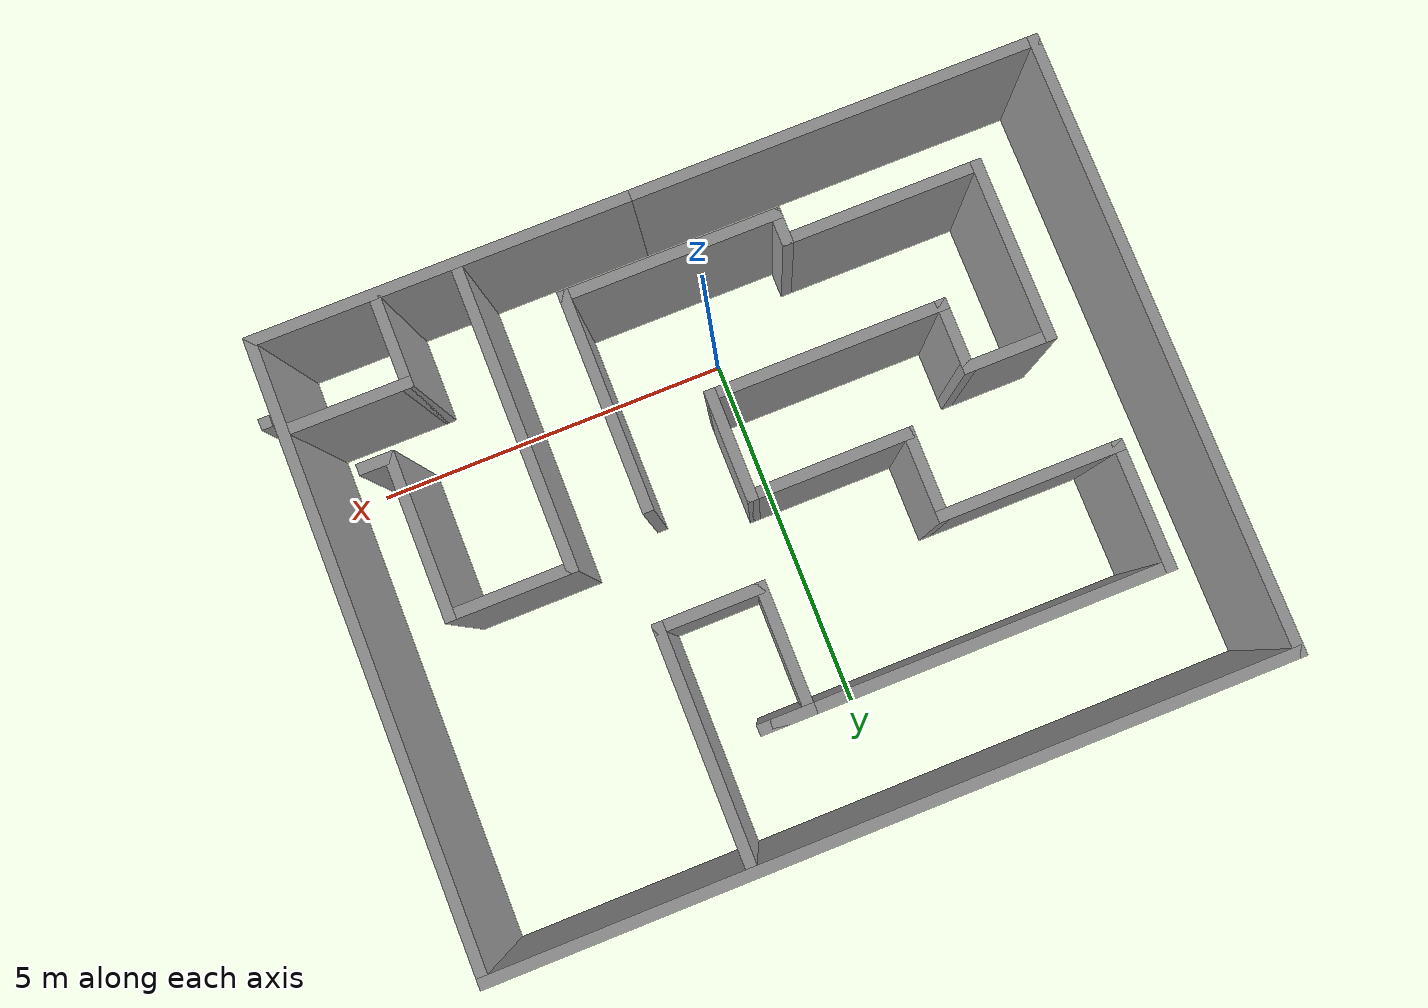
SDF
<?xml version='1.0'?>
<sdf version='1.7'>
  <model name='percobaan'>
    <pose>0.188272 2.20347 0 0 -0 0</pose>
    <link name='Wall_16'>
      <collision name='Wall_16_Collision'>
        <geometry>
          <box>
            <size>0.15 0.15 2.5</size>
          </box>
        </geometry>
        <pose>0 0 1.25 0 -0 0</pose>
      </collision>
      <visual name='Wall_16_Visual'>
        <pose>0 0 1.25 0 -0 0</pose>
        <geometry>
          <box>
            <size>0.15 0.15 2.5</size>
          </box>
        </geometry>
        <material>
          <script>
            <uri>file://media/materials/scripts/gazebo.material</uri>
            <name>Gazebo/Grey</name>
          </script>
          <ambient>1 1 1 1</ambient>
        </material>
        <meta>
          <layer>0</layer>
        </meta>
      </visual>
      <pose>5.38083 -3.13679 0 0 -0 0</pose>
    </link>
    <link name='Wall_35'>
      <collision name='Wall_35_Collision'>
        <geometry>
          <box>
            <size>5.75 0.15 2.5</size>
          </box>
        </geometry>
        <pose>0 0 1.25 0 -0 0</pose>
      </collision>
      <visual name='Wall_35_Visual'>
        <pose>0 0 1.25 0 -0 0</pose>
        <geometry>
          <box>
            <size>5.75 0.15 2.5</size>
          </box>
        </geometry>
        <material>
          <script>
            <uri>file://media/materials/scripts/gazebo.material</uri>
            <name>Gazebo/Grey</name>
          </script>
          <ambient>1 1 1 1</ambient>
        </material>
        <meta>
          <layer>0</layer>
        </meta>
      </visual>
      <pose>-2.58083 -4.175 0 0 -0 3.14159</pose>
    </link>
    <link name='Wall_38'>
      <collision name='Wall_38_Collision'>
        <geometry>
          <box>
            <size>8.5 0.15 2.5</size>
          </box>
        </geometry>
        <pose>0 0 1.25 0 -0 0</pose>
      </collision>
      <visual name='Wall_38_Visual'>
        <pose>0 0 1.25 0 -0 0</pose>
        <geometry>
          <box>
            <size>8.5 0.15 2.5</size>
          </box>
        </geometry>
        <material>
          <script>
            <uri>file://media/materials/scripts/gazebo.material</uri>
            <name>Gazebo/Grey</name>
          </script>
          <ambient>1 1 1 1</ambient>
        </material>
        <meta>
          <layer>0</layer>
        </meta>
      </visual>
      <pose>-5.38083 -0 0 0 -0 1.5708</pose>
    </link>
    <link name='Wall_39'>
      <collision name='Wall_39_Collision'>
        <geometry>
          <box>
            <size>10.75 0.15 2.5</size>
          </box>
        </geometry>
        <pose>0 0 1.25 0 -0 0</pose>
      </collision>
      <visual name='Wall_39_Visual'>
        <pose>0 0 1.25 0 -0 0</pose>
        <geometry>
          <box>
            <size>10.75 0.15 2.5</size>
          </box>
        </geometry>
        <material>
          <script>
            <uri>file://media/materials/scripts/gazebo.material</uri>
            <name>Gazebo/Grey</name>
          </script>
          <ambient>1 1 1 1</ambient>
        </material>
        <meta>
          <layer>0</layer>
        </meta>
      </visual>
      <pose>-0.080832 4.175 0 0 -0 0</pose>
    </link>
    <link name='Wall_42'>
      <collision name='Wall_42_Collision'>
        <geometry>
          <box>
            <size>8.5 0.15 2.5</size>
          </box>
        </geometry>
        <pose>0 0 1.25 0 -0 0</pose>
      </collision>
      <visual name='Wall_42_Visual'>
        <pose>0 0 1.25 0 -0 0</pose>
        <geometry>
          <box>
            <size>8.5 0.15 2.5</size>
          </box>
        </geometry>
        <material>
          <script>
            <uri>file://media/materials/scripts/gazebo.material</uri>
            <name>Gazebo/Grey</name>
          </script>
          <ambient>1 1 1 1</ambient>
        </material>
        <meta>
          <layer>0</layer>
        </meta>
      </visual>
      <pose>5.21917 -0 0 0 -0 -1.5708</pose>
    </link>
    <link name='Wall_43'>
      <collision name='Wall_43_Collision'>
        <geometry>
          <box>
            <size>5.15 0.15 2.5</size>
          </box>
        </geometry>
        <pose>0 0 1.25 0 -0 0</pose>
      </collision>
      <visual name='Wall_43_Visual'>
        <pose>0 0 1.25 0 -0 0</pose>
        <geometry>
          <box>
            <size>5.15 0.15 2.5</size>
          </box>
        </geometry>
        <material>
          <script>
            <uri>file://media/materials/scripts/gazebo.material</uri>
            <name>Gazebo/Grey</name>
          </script>
          <ambient>1 1 1 1</ambient>
        </material>
        <meta>
          <layer>0</layer>
        </meta>
      </visual>
      <pose>2.71917 -4.175 0 0 -0 3.14159</pose>
    </link>
    <link name='Wall_45'>
      <collision name='Wall_45_Collision'>
        <geometry>
          <box>
            <size>4.25 0.15 2.5</size>
          </box>
        </geometry>
        <pose>0 0 1.25 0 -0 0</pose>
      </collision>
      <visual name='Wall_45_Visual'>
        <pose>0 0 1.25 0 -0 0</pose>
        <geometry>
          <box>
            <size>4.25 0.15 2.5</size>
          </box>
        </geometry>
        <material>
          <script>
            <uri>file://media/materials/scripts/gazebo.material</uri>
            <name>Gazebo/Grey</name>
          </script>
          <ambient>1 1 1 1</ambient>
        </material>
        <meta>
          <layer>0</layer>
        </meta>
      </visual>
      <pose>2.49772 -2.1103 0 0 -0 1.5708</pose>
    </link>
    <link name='Wall_46'>
      <collision name='Wall_46_Collision'>
        <geometry>
          <box>
            <size>1.75 0.15 2.5</size>
          </box>
        </geometry>
        <pose>0 0 1.25 0 -0 0</pose>
      </collision>
      <visual name='Wall_46_Visual'>
        <pose>0 0 1.25 0 -0 0</pose>
        <geometry>
          <box>
            <size>1.75 0.15 2.5</size>
          </box>
        </geometry>
        <material>
          <script>
            <uri>file://media/materials/scripts/gazebo.material</uri>
            <name>Gazebo/Grey</name>
          </script>
          <ambient>1 1 1 1</ambient>
        </material>
        <meta>
          <layer>0</layer>
        </meta>
      </visual>
      <pose>3.29772 -0.060298 0 0 -0 0</pose>
    </link>
    <link name='Wall_47'>
      <collision name='Wall_47_Collision'>
        <geometry>
          <box>
            <size>2.25 0.15 2.5</size>
          </box>
        </geometry>
        <pose>0 0 1.25 0 -0 0</pose>
      </collision>
      <visual name='Wall_47_Visual'>
        <pose>0 0 1.25 0 -0 0</pose>
        <geometry>
          <box>
            <size>2.25 0.15 2.5</size>
          </box>
        </geometry>
        <material>
          <script>
            <uri>file://media/materials/scripts/gazebo.material</uri>
            <name>Gazebo/Grey</name>
          </script>
          <ambient>1 1 1 1</ambient>
        </material>
        <meta>
          <layer>0</layer>
        </meta>
      </visual>
      <pose>4.09772 -1.1103 0 0 -0 -1.5708</pose>
    </link>
    <link name='Wall_50'>
      <collision name='Wall_50_Collision'>
        <geometry>
          <box>
            <size>1.25 0.15 2.5</size>
          </box>
        </geometry>
        <pose>0 0 1.25 0 -0 0</pose>
      </collision>
      <visual name='Wall_50_Visual'>
        <pose>0 0 1.25 0 -0 0</pose>
        <geometry>
          <box>
            <size>1.25 0.15 2.5</size>
          </box>
        </geometry>
        <material>
          <script>
            <uri>file://media/materials/scripts/gazebo.material</uri>
            <name>Gazebo/Grey</name>
          </script>
          <ambient>1 1 1 1</ambient>
        </material>
        <meta>
          <layer>0</layer>
        </meta>
      </visual>
      <pose>3.58385 -3.50973 0 0 -0 1.5708</pose>
    </link>
    <link name='Wall_51'>
      <collision name='Wall_51_Collision'>
        <geometry>
          <box>
            <size>1.75 0.15 2.5</size>
          </box>
        </geometry>
        <pose>0 0 1.25 0 -0 0</pose>
      </collision>
      <visual name='Wall_51_Visual'>
        <pose>0 0 1.25 0 -0 0</pose>
        <geometry>
          <box>
            <size>1.75 0.15 2.5</size>
          </box>
        </geometry>
        <material>
          <script>
            <uri>file://media/materials/scripts/gazebo.material</uri>
            <name>Gazebo/Grey</name>
          </script>
          <ambient>1 1 1 1</ambient>
        </material>
        <meta>
          <layer>0</layer>
        </meta>
      </visual>
      <pose>4.38385 -2.95973 0 0 -0 0</pose>
    </link>
    <link name='Wall_53'>
      <collision name='Wall_53_Collision'>
        <geometry>
          <box>
            <size>0.5 0.15 2.5</size>
          </box>
        </geometry>
        <pose>0 0 1.25 0 -0 0</pose>
      </collision>
      <visual name='Wall_53_Visual'>
        <pose>0 0 1.25 0 -0 0</pose>
        <geometry>
          <box>
            <size>0.5 0.15 2.5</size>
          </box>
        </geometry>
        <material>
          <script>
            <uri>file://media/materials/scripts/gazebo.material</uri>
            <name>Gazebo/Grey</name>
          </script>
          <ambient>1 1 1 1</ambient>
        </material>
        <meta>
          <layer>0</layer>
        </meta>
      </visual>
      <pose>4.27272 -2.1603 0 0 -0 0</pose>
    </link>
    <link name='Wall_55'>
      <collision name='Wall_55_Collision'>
        <geometry>
          <box>
            <size>3.25 0.15 2.5</size>
          </box>
        </geometry>
        <pose>0 0 1.25 0 -0 0</pose>
      </collision>
      <visual name='Wall_55_Visual'>
        <pose>0 0 1.25 0 -0 0</pose>
        <geometry>
          <box>
            <size>3.25 0.15 2.5</size>
          </box>
        </geometry>
        <material>
          <script>
            <uri>file://media/materials/scripts/gazebo.material</uri>
            <name>Gazebo/Grey</name>
          </script>
          <ambient>1 1 1 1</ambient>
        </material>
        <meta>
          <layer>0</layer>
        </meta>
      </visual>
      <pose>1.77363 2.57649 0 0 -0 -1.5708</pose>
    </link>
    <link name='Wall_56'>
      <collision name='Wall_56_Collision'>
        <geometry>
          <box>
            <size>1.5 0.15 2.5</size>
          </box>
        </geometry>
        <pose>0 0 1.25 0 -0 0</pose>
      </collision>
      <visual name='Wall_56_Visual'>
        <pose>0 0 1.25 0 -0 0</pose>
        <geometry>
          <box>
            <size>1.5 0.15 2.5</size>
          </box>
        </geometry>
        <material>
          <script>
            <uri>file://media/materials/scripts/gazebo.material</uri>
            <name>Gazebo/Grey</name>
          </script>
          <ambient>1 1 1 1</ambient>
        </material>
        <meta>
          <layer>0</layer>
        </meta>
      </visual>
      <pose>1.09863 1.02649 0 0 -0 3.14159</pose>
    </link>
    <link name='Wall_57'>
      <collision name='Wall_57_Collision'>
        <geometry>
          <box>
            <size>1.75 0.15 2.5</size>
          </box>
        </geometry>
        <pose>0 0 1.25 0 -0 0</pose>
      </collision>
      <visual name='Wall_57_Visual'>
        <pose>0 0 1.25 0 -0 0</pose>
        <geometry>
          <box>
            <size>1.75 0.15 2.5</size>
          </box>
        </geometry>
        <material>
          <script>
            <uri>file://media/materials/scripts/gazebo.material</uri>
            <name>Gazebo/Grey</name>
          </script>
          <ambient>1 1 1 1</ambient>
        </material>
        <meta>
          <layer>0</layer>
        </meta>
      </visual>
      <pose>0.423631 1.82649 0 0 -0 1.5708</pose>
    </link>
    <link name='Wall_58'>
      <collision name='Wall_58_Collision'>
        <geometry>
          <box>
            <size>0.75 0.15 2.5</size>
          </box>
        </geometry>
        <pose>0 0 1.25 0 -0 0</pose>
      </collision>
      <visual name='Wall_58_Visual'>
        <pose>0 0 1.25 0 -0 0</pose>
        <geometry>
          <box>
            <size>0.75 0.15 2.5</size>
          </box>
        </geometry>
        <material>
          <script>
            <uri>file://media/materials/scripts/gazebo.material</uri>
            <name>Gazebo/Grey</name>
          </script>
          <ambient>1 1 1 1</ambient>
        </material>
        <meta>
          <layer>0</layer>
        </meta>
      </visual>
      <pose>0.723631 2.62649 0 0 -0 0</pose>
    </link>
    <link name='Wall_59'>
      <collision name='Wall_59_Collision'>
        <geometry>
          <box>
            <size>5.5 0.15 2.5</size>
          </box>
        </geometry>
        <pose>0 0 1.25 0 -0 0</pose>
      </collision>
      <visual name='Wall_59_Visual'>
        <pose>0 0 1.25 0 -0 0</pose>
        <geometry>
          <box>
            <size>5.5 0.15 2.5</size>
          </box>
        </geometry>
        <material>
          <script>
            <uri>file://media/materials/scripts/gazebo.material</uri>
            <name>Gazebo/Grey</name>
          </script>
          <ambient>1 1 1 1</ambient>
        </material>
        <meta>
          <layer>0</layer>
        </meta>
      </visual>
      <pose>-1.65137 2.62649 0 0 -0 3.14159</pose>
    </link>
    <link name='Wall_60'>
      <collision name='Wall_60_Collision'>
        <geometry>
          <box>
            <size>1.75 0.15 2.5</size>
          </box>
        </geometry>
        <pose>0 0 1.25 0 -0 0</pose>
      </collision>
      <visual name='Wall_60_Visual'>
        <pose>0 0 1.25 0 -0 0</pose>
        <geometry>
          <box>
            <size>1.75 0.15 2.5</size>
          </box>
        </geometry>
        <material>
          <script>
            <uri>file://media/materials/scripts/gazebo.material</uri>
            <name>Gazebo/Grey</name>
          </script>
          <ambient>1 1 1 1</ambient>
        </material>
        <meta>
          <layer>0</layer>
        </meta>
      </visual>
      <pose>-4.32637 1.82649 0 0 -0 -1.5708</pose>
    </link>
    <link name='Wall_61'>
      <collision name='Wall_61_Collision'>
        <geometry>
          <box>
            <size>2.5 0.15 2.5</size>
          </box>
        </geometry>
        <pose>0 0 1.25 0 -0 0</pose>
      </collision>
      <visual name='Wall_61_Visual'>
        <pose>0 0 1.25 0 -0 0</pose>
        <geometry>
          <box>
            <size>2.5 0.15 2.5</size>
          </box>
        </geometry>
        <material>
          <script>
            <uri>file://media/materials/scripts/gazebo.material</uri>
            <name>Gazebo/Grey</name>
          </script>
          <ambient>1 1 1 1</ambient>
        </material>
        <meta>
          <layer>0</layer>
        </meta>
      </visual>
      <pose>-3.15137 1.02649 0 0 -0 0</pose>
    </link>
    <link name='Wall_62'>
      <collision name='Wall_62_Collision'>
        <geometry>
          <box>
            <size>1.25 0.15 2.5</size>
          </box>
        </geometry>
        <pose>0 0 1.25 0 -0 0</pose>
      </collision>
      <visual name='Wall_62_Visual'>
        <pose>0 0 1.25 0 -0 0</pose>
        <geometry>
          <box>
            <size>1.25 0.15 2.5</size>
          </box>
        </geometry>
        <material>
          <script>
            <uri>file://media/materials/scripts/gazebo.material</uri>
            <name>Gazebo/Grey</name>
          </script>
          <ambient>1 1 1 1</ambient>
        </material>
        <meta>
          <layer>0</layer>
        </meta>
      </visual>
      <pose>-1.97637 0.476494 0 0 -0 -1.5708</pose>
    </link>
    <link name='Wall_63'>
      <collision name='Wall_63_Collision'>
        <geometry>
          <box>
            <size>2.25 0.15 2.5</size>
          </box>
        </geometry>
        <pose>0 0 1.25 0 -0 0</pose>
      </collision>
      <visual name='Wall_63_Visual'>
        <pose>0 0 1.25 0 -0 0</pose>
        <geometry>
          <box>
            <size>2.25 0.15 2.5</size>
          </box>
        </geometry>
        <material>
          <script>
            <uri>file://media/materials/scripts/gazebo.material</uri>
            <name>Gazebo/Grey</name>
          </script>
          <ambient>1 1 1 1</ambient>
        </material>
        <meta>
          <layer>0</layer>
        </meta>
      </visual>
      <pose>-0.926369 -0.073506 0 0 -0 0</pose>
    </link>
    <link name='Wall_64'>
      <collision name='Wall_64_Collision'>
        <geometry>
          <box>
            <size>1.5 0.15 2.5</size>
          </box>
        </geometry>
        <pose>0 0 1.25 0 -0 0</pose>
      </collision>
      <visual name='Wall_64_Visual'>
        <pose>0 0 1.25 0 -0 0</pose>
        <geometry>
          <box>
            <size>1.5 0.15 2.5</size>
          </box>
        </geometry>
        <material>
          <script>
            <uri>file://media/materials/scripts/gazebo.material</uri>
            <name>Gazebo/Grey</name>
          </script>
          <ambient>1 1 1 1</ambient>
        </material>
        <meta>
          <layer>0</layer>
        </meta>
      </visual>
      <pose>0.123631 -0.748506 0 0 -0 -1.5708</pose>
    </link>
    <link name='Wall_65'>
      <collision name='Wall_65_Collision'>
        <geometry>
          <box>
            <size>3.25 0.15 2.5</size>
          </box>
        </geometry>
        <pose>0 0 1.25 0 -0 0</pose>
      </collision>
      <visual name='Wall_65_Visual'>
        <pose>0 0 1.25 0 -0 0</pose>
        <geometry>
          <box>
            <size>3.25 0.15 2.5</size>
          </box>
        </geometry>
        <material>
          <script>
            <uri>file://media/materials/scripts/gazebo.material</uri>
            <name>Gazebo/Grey</name>
          </script>
          <ambient>1 1 1 1</ambient>
        </material>
        <meta>
          <layer>0</layer>
        </meta>
      </visual>
      <pose>-1.42637 -1.42351 0 0 -0 3.14159</pose>
    </link>
    <link name='Wall_66'>
      <collision name='Wall_66_Collision'>
        <geometry>
          <box>
            <size>1 0.15 2.5</size>
          </box>
        </geometry>
        <pose>0 0 1.25 0 -0 0</pose>
      </collision>
      <visual name='Wall_66_Visual'>
        <pose>0 0 1.25 0 -0 0</pose>
        <geometry>
          <box>
            <size>1 0.15 2.5</size>
          </box>
        </geometry>
        <material>
          <script>
            <uri>file://media/materials/scripts/gazebo.material</uri>
            <name>Gazebo/Grey</name>
          </script>
          <ambient>1 1 1 1</ambient>
        </material>
        <meta>
          <layer>0</layer>
        </meta>
      </visual>
      <pose>-2.97637 -0.998506 0 0 -0 1.5708</pose>
    </link>
    <link name='Wall_67'>
      <collision name='Wall_67_Collision'>
        <geometry>
          <box>
            <size>1.25 0.15 2.5</size>
          </box>
        </geometry>
        <pose>0 0 1.25 0 -0 0</pose>
      </collision>
      <visual name='Wall_67_Visual'>
        <pose>0 0 1.25 0 -0 0</pose>
        <geometry>
          <box>
            <size>1.25 0.15 2.5</size>
          </box>
        </geometry>
        <material>
          <script>
            <uri>file://media/materials/scripts/gazebo.material</uri>
            <name>Gazebo/Grey</name>
          </script>
          <ambient>1 1 1 1</ambient>
        </material>
        <meta>
          <layer>0</layer>
        </meta>
      </visual>
      <pose>-3.52637 -0.573506 0 0 -0 3.14159</pose>
    </link>
    <link name='Wall_68'>
      <collision name='Wall_68_Collision'>
        <geometry>
          <box>
            <size>2.5 0.15 2.5</size>
          </box>
        </geometry>
        <pose>0 0 1.25 0 -0 0</pose>
      </collision>
      <visual name='Wall_68_Visual'>
        <pose>0 0 1.25 0 -0 0</pose>
        <geometry>
          <box>
            <size>2.5 0.15 2.5</size>
          </box>
        </geometry>
        <material>
          <script>
            <uri>file://media/materials/scripts/gazebo.material</uri>
            <name>Gazebo/Grey</name>
          </script>
          <ambient>1 1 1 1</ambient>
        </material>
        <meta>
          <layer>0</layer>
        </meta>
      </visual>
      <pose>-4.07637 -1.74851 0 0 -0 -1.5708</pose>
    </link>
    <link name='Wall_69'>
      <collision name='Wall_69_Collision'>
        <geometry>
          <box>
            <size>2.75 0.15 2.5</size>
          </box>
        </geometry>
        <pose>0 0 1.25 0 -0 0</pose>
      </collision>
      <visual name='Wall_69_Visual'>
        <pose>0 0 1.25 0 -0 0</pose>
        <geometry>
          <box>
            <size>2.75 0.15 2.5</size>
          </box>
        </geometry>
        <material>
          <script>
            <uri>file://media/materials/scripts/gazebo.material</uri>
            <name>Gazebo/Grey</name>
          </script>
          <ambient>1 1 1 1</ambient>
        </material>
        <meta>
          <layer>0</layer>
        </meta>
      </visual>
      <pose>-2.77637 -2.92351 0 0 -0 0</pose>
    </link>
    <link name='Wall_70'>
      <collision name='Wall_70_Collision'>
        <geometry>
          <box>
            <size>0.5 0.15 2.5</size>
          </box>
        </geometry>
        <pose>0 0 1.25 0 -0 0</pose>
      </collision>
      <visual name='Wall_70_Visual'>
        <pose>0 0 1.25 0 -0 0</pose>
        <geometry>
          <box>
            <size>0.5 0.15 2.5</size>
          </box>
        </geometry>
        <material>
          <script>
            <uri>file://media/materials/scripts/gazebo.material</uri>
            <name>Gazebo/Grey</name>
          </script>
          <ambient>1 1 1 1</ambient>
        </material>
        <meta>
          <layer>0</layer>
        </meta>
      </visual>
      <pose>-1.47637 -3.09851 0 0 -0 -1.5708</pose>
    </link>
    <link name='Wall_71'>
      <collision name='Wall_71_Collision'>
        <geometry>
          <box>
            <size>3 0.15 2.5</size>
          </box>
        </geometry>
        <pose>0 0 1.25 0 -0 0</pose>
      </collision>
      <visual name='Wall_71_Visual'>
        <pose>0 0 1.25 0 -0 0</pose>
        <geometry>
          <box>
            <size>3 0.15 2.5</size>
          </box>
        </geometry>
        <material>
          <script>
            <uri>file://media/materials/scripts/gazebo.material</uri>
            <name>Gazebo/Grey</name>
          </script>
          <ambient>1 1 1 1</ambient>
        </material>
        <meta>
          <layer>0</layer>
        </meta>
      </visual>
      <pose>-0.051369 -3.27351 0 0 -0 0</pose>
    </link>
    <link name='Wall_72'>
      <collision name='Wall_72_Collision'>
        <geometry>
          <box>
            <size>3 0.15 2.5</size>
          </box>
        </geometry>
        <pose>0 0 1.25 0 -0 0</pose>
      </collision>
      <visual name='Wall_72_Visual'>
        <pose>0 0 1.25 0 -0 0</pose>
        <geometry>
          <box>
            <size>3 0.15 2.5</size>
          </box>
        </geometry>
        <material>
          <script>
            <uri>file://media/materials/scripts/gazebo.material</uri>
            <name>Gazebo/Grey</name>
          </script>
          <ambient>1 1 1 1</ambient>
        </material>
        <meta>
          <layer>0</layer>
        </meta>
      </visual>
      <pose>1.37363 -1.84851 0 0 -0 1.5708</pose>
    </link>
    <static>1</static>
  </model>
</sdf>
